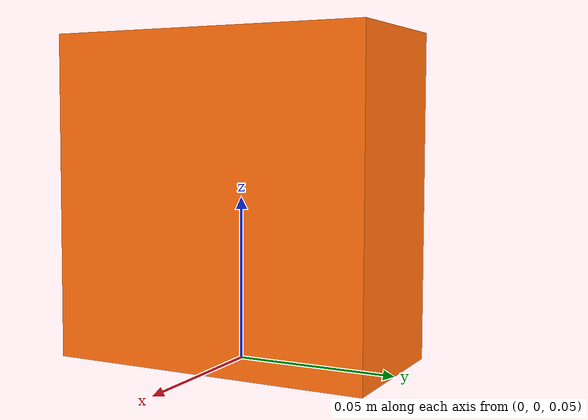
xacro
<?xml version="1.0"?>

<robot name="sensor" xmlns:xacro="http://www.ros.org/wiki/xacro">
    <xacro:property name="sensor_name" value="ultrasonic" />
    <xacro:property name="mass" value="0.1" />

    <!-- Used for fixing robot to Gazebo 'base_link' -->
    <link name="world"/>

    <joint name="fixed" type="fixed">
        <parent link="world"/>
        <child link="${sensor_name}_link"/>
        <origin xyz="0 0 0.1" rpy="0 0 0"/>
    </joint>

    <!-- ultrasound Link -->
    <link name="${sensor_name}_link">
        <collision>
            <origin xyz="0 0 0.0" rpy="1.57 0 0"/>
            <geometry>
                <box size="0.05 0.1 0.1"/>
            </geometry>
        </collision>
        <visual>
            <origin xyz="0 0 0.0" rpy="1.57 0 0"/>
            <geometry>
                <box size="0.05 0.1 0.1"/>
            </geometry>
            <material name="orange"/>
        </visual>
        <inertial>
            <origin xyz="0 0 0" rpy="0 0 0"/>
            <mass value="${mass}"/>
            <inertia ixx="${mass}" ixy="0.0" ixz="0.0" iyy="${mass}" iyz="0.0" izz="${mass}"/>
        </inertial>
    </link>

    <material name="orange">
        <color rgba="${255/255} ${108/255} ${10/255} 1.0"/>
    </material>

    <gazebo reference="${sensor_name}_link">
        <sensor type="ray" name="head_${sensor_name}_sensor">
            <pose>0 0 0 0 0 0</pose>
            <visualize>true</visualize>
            <update_rate>40</update_rate>
            <ray>
                <scan>
                    <horizontal>
                        <samples>5</samples>
                        <resolution>1.0</resolution>
                        <min_angle>-0.157</min_angle>
                        <max_angle>0.157</max_angle>
                    </horizontal>
                    <vertical>
                        <samples>5</samples>
                        <resolution>1.0</resolution>
                        <min_angle>-0.157</min_angle>
                        <max_angle>0.157</max_angle>
                    </vertical>
                </scan>
                <range>
                    <min>0.10</min>
                    <max>1.3</max>
                    <resolution>0.01</resolution>
                </range>
                <noise>
                    <type>gaussian</type>
                    <mean>0.0</mean>
                    <stddev>0.01</stddev>
                </noise>
            </ray>
            <plugin name="gazebo_ros_head_${sensor_name}_controller" filename="libgazebo_ros_ray_sensor.so">
                <ros>
                    <namespace>${sensor_name}</namespace>
                    <remapping>~/out:=range</remapping>
                </ros>
                <output_type>sensor_msgs/Range</output_type>
                <radiation_type>ultrasound</radiation_type>
            </plugin>
        </sensor>
        <material>Gazebo/Blue</material>
    </gazebo>
</robot>
